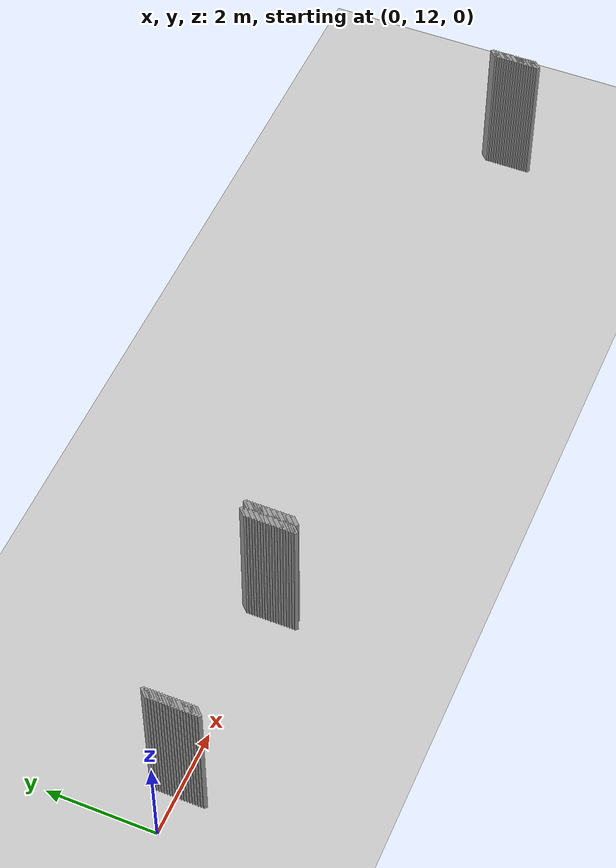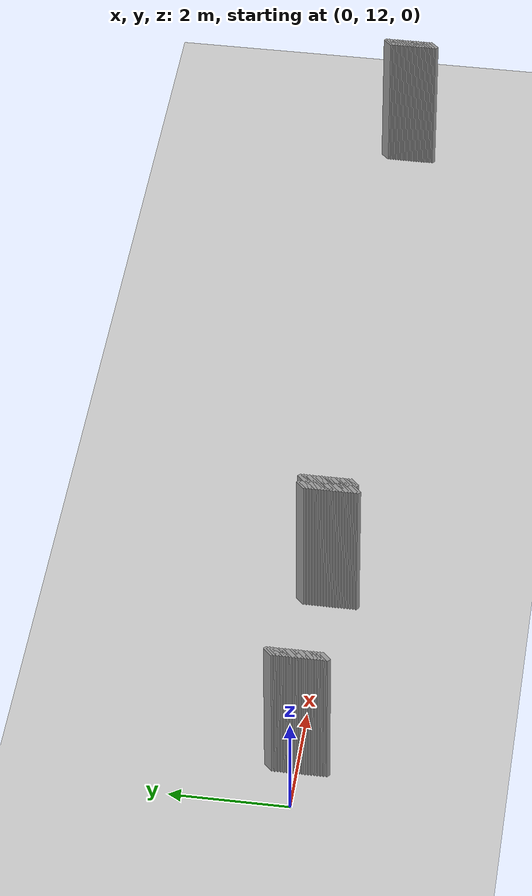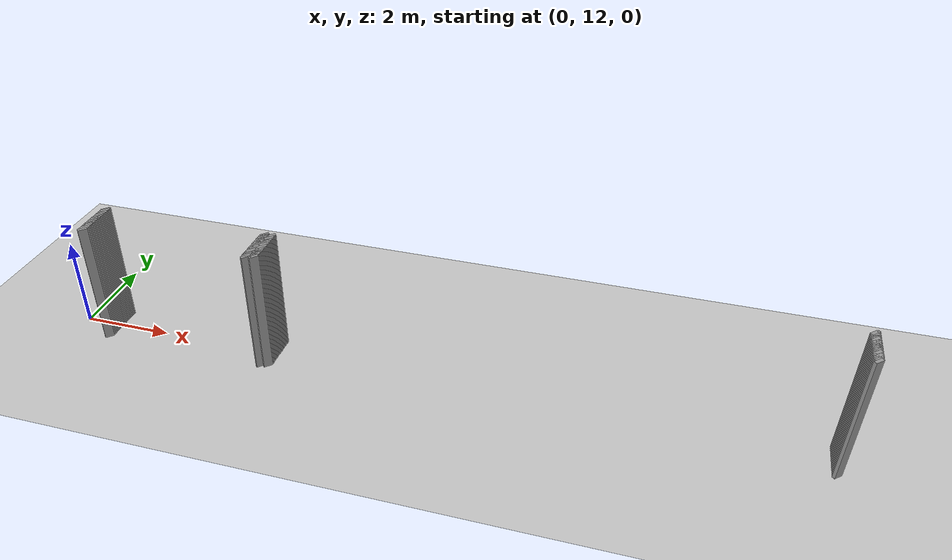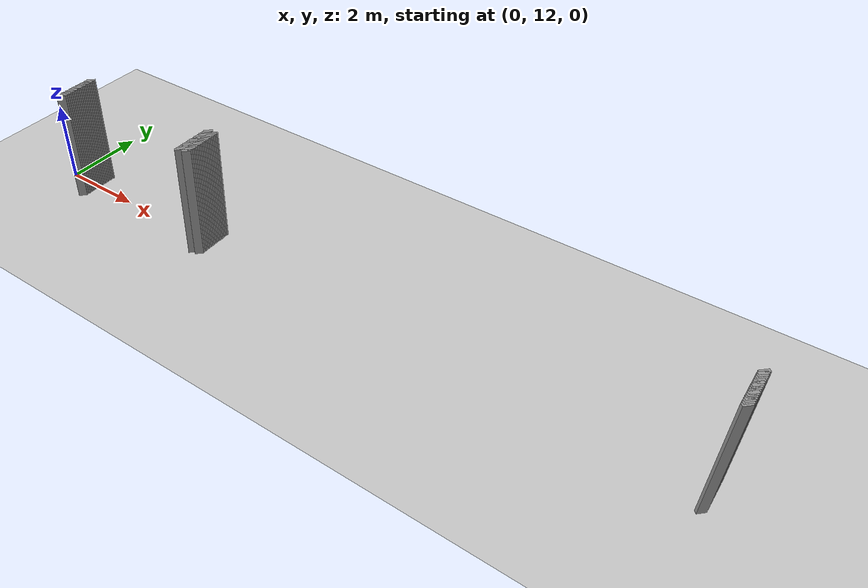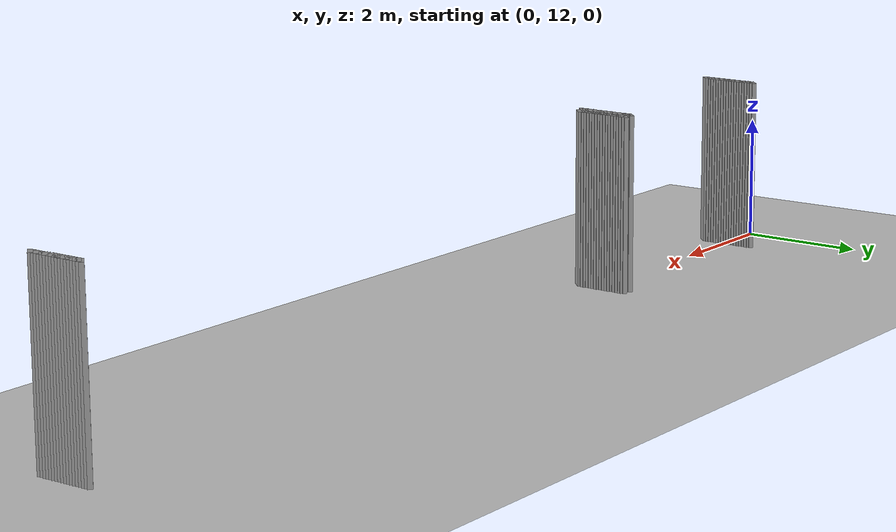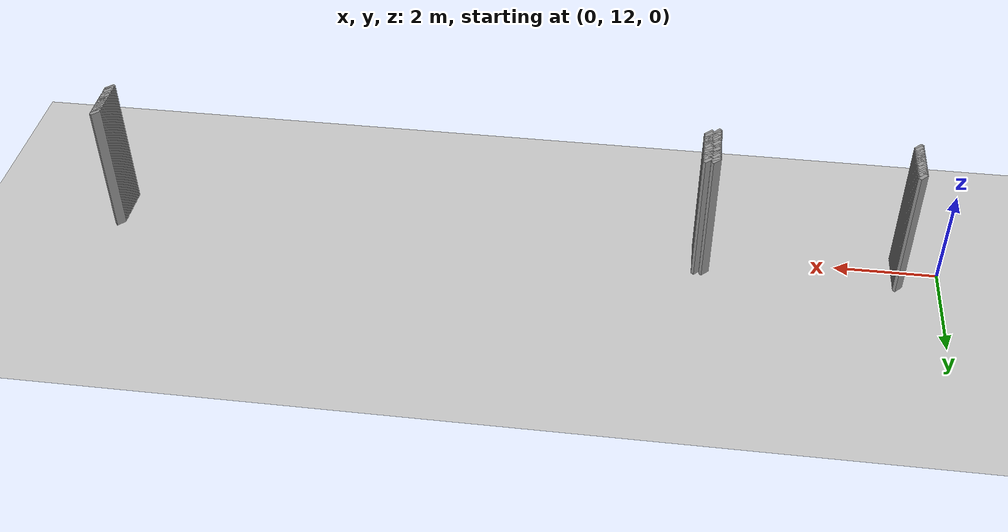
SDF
<sdf version="1.5">
 <world name="default">
  <include><uri>model://ground_plane</uri></include>
  <include><uri>model://sun</uri></include>
  <model name="grey_wall_1330">
   <static>1</static>
   <link name="link">
    <pose>0.8 12.450000000000001  1.4 0 0 -0.7853981633974549</pose>
    <collision name="collision">
     <geometry><box><size>0.07071067811865529 .2  2.8</size></box></geometry>
    </collision>
    <visual name="visual">
     <cast_shadows>0</cast_shadows>
     <geometry><box><size>0.07071067811865529 .2  2.8</size></box></geometry>
     <material>
      <script>
       <uri>model://grey_wall/materials/scripts</uri>
       <uri>model://grey_wall/materials/textures</uri>
       <name>vrc/grey_wall</name>
      </script>
     </material>
    </visual>
   </link>
  </model>
  <model name="grey_wall_1331">
   <static>1</static>
   <link name="link">
    <pose>4.55 12.450000000000001  1.4 0 0 -0.7853981633974483</pose>
    <collision name="collision">
     <geometry><box><size>0.07071067811865576 .2  2.8</size></box></geometry>
    </collision>
    <visual name="visual">
     <cast_shadows>0</cast_shadows>
     <geometry><box><size>0.07071067811865576 .2  2.8</size></box></geometry>
     <material>
      <script>
       <uri>model://grey_wall/materials/scripts</uri>
       <uri>model://grey_wall/materials/textures</uri>
       <name>vrc/grey_wall</name>
      </script>
     </material>
    </visual>
   </link>
  </model>
  <model name="grey_wall_1332">
   <static>1</static>
   <link name="link">
    <pose>4.7 12.450000000000001  1.4 0 0 -0.7853981633974483</pose>
    <collision name="collision">
     <geometry><box><size>0.07071067811865576 .2  2.8</size></box></geometry>
    </collision>
    <visual name="visual">
     <cast_shadows>0</cast_shadows>
     <geometry><box><size>0.07071067811865576 .2  2.8</size></box></geometry>
     <material>
      <script>
       <uri>model://grey_wall/materials/scripts</uri>
       <uri>model://grey_wall/materials/textures</uri>
       <name>vrc/grey_wall</name>
      </script>
     </material>
    </visual>
   </link>
  </model>
  <model name="grey_wall_1333">
   <static>1</static>
   <link name="link">
    <pose>16.45 12.450000000000001  1.4 0 0 -0.7853981633974838</pose>
    <collision name="collision">
     <geometry><box><size>0.07071067811865325 .2  2.8</size></box></geometry>
    </collision>
    <visual name="visual">
     <cast_shadows>0</cast_shadows>
     <geometry><box><size>0.07071067811865325 .2  2.8</size></box></geometry>
     <material>
      <script>
       <uri>model://grey_wall/materials/scripts</uri>
       <uri>model://grey_wall/materials/textures</uri>
       <name>vrc/grey_wall</name>
      </script>
     </material>
    </visual>
   </link>
  </model>
  <model name="grey_wall_1334">
   <static>1</static>
   <link name="link">
    <pose>0.8 12.4  1.4 0 0 -0.7853981633974549</pose>
    <collision name="collision">
     <geometry><box><size>0.07071067811865529 .2  2.8</size></box></geometry>
    </collision>
    <visual name="visual">
     <cast_shadows>0</cast_shadows>
     <geometry><box><size>0.07071067811865529 .2  2.8</size></box></geometry>
     <material>
      <script>
       <uri>model://grey_wall/materials/scripts</uri>
       <uri>model://grey_wall/materials/textures</uri>
       <name>vrc/grey_wall</name>
      </script>
     </material>
    </visual>
   </link>
  </model>
  <model name="grey_wall_1335">
   <static>1</static>
   <link name="link">
    <pose>4.55 12.4  1.4 0 0 -0.7853981633974483</pose>
    <collision name="collision">
     <geometry><box><size>0.07071067811865576 .2  2.8</size></box></geometry>
    </collision>
    <visual name="visual">
     <cast_shadows>0</cast_shadows>
     <geometry><box><size>0.07071067811865576 .2  2.8</size></box></geometry>
     <material>
      <script>
       <uri>model://grey_wall/materials/scripts</uri>
       <uri>model://grey_wall/materials/textures</uri>
       <name>vrc/grey_wall</name>
      </script>
     </material>
    </visual>
   </link>
  </model>
  <model name="grey_wall_1336">
   <static>1</static>
   <link name="link">
    <pose>4.7 12.4  1.4 0 0 -0.7853981633974483</pose>
    <collision name="collision">
     <geometry><box><size>0.07071067811865576 .2  2.8</size></box></geometry>
    </collision>
    <visual name="visual">
     <cast_shadows>0</cast_shadows>
     <geometry><box><size>0.07071067811865576 .2  2.8</size></box></geometry>
     <material>
      <script>
       <uri>model://grey_wall/materials/scripts</uri>
       <uri>model://grey_wall/materials/textures</uri>
       <name>vrc/grey_wall</name>
      </script>
     </material>
    </visual>
   </link>
  </model>
  <model name="grey_wall_1337">
   <static>1</static>
   <link name="link">
    <pose>16.45 12.4  1.4 0 0 -0.7853981633974838</pose>
    <collision name="collision">
     <geometry><box><size>0.07071067811865325 .2  2.8</size></box></geometry>
    </collision>
    <visual name="visual">
     <cast_shadows>0</cast_shadows>
     <geometry><box><size>0.07071067811865325 .2  2.8</size></box></geometry>
     <material>
      <script>
       <uri>model://grey_wall/materials/scripts</uri>
       <uri>model://grey_wall/materials/textures</uri>
       <name>vrc/grey_wall</name>
      </script>
     </material>
    </visual>
   </link>
  </model>
  <model name="grey_wall_1338">
   <static>1</static>
   <link name="link">
    <pose>0.8 12.350000000000001  1.4 0 0 -0.7853981633974549</pose>
    <collision name="collision">
     <geometry><box><size>0.07071067811865529 .2  2.8</size></box></geometry>
    </collision>
    <visual name="visual">
     <cast_shadows>0</cast_shadows>
     <geometry><box><size>0.07071067811865529 .2  2.8</size></box></geometry>
     <material>
      <script>
       <uri>model://grey_wall/materials/scripts</uri>
       <uri>model://grey_wall/materials/textures</uri>
       <name>vrc/grey_wall</name>
      </script>
     </material>
    </visual>
   </link>
  </model>
  <model name="grey_wall_1339">
   <static>1</static>
   <link name="link">
    <pose>4.55 12.350000000000001  1.4 0 0 -0.7853981633974483</pose>
    <collision name="collision">
     <geometry><box><size>0.07071067811865576 .2  2.8</size></box></geometry>
    </collision>
    <visual name="visual">
     <cast_shadows>0</cast_shadows>
     <geometry><box><size>0.07071067811865576 .2  2.8</size></box></geometry>
     <material>
      <script>
       <uri>model://grey_wall/materials/scripts</uri>
       <uri>model://grey_wall/materials/textures</uri>
       <name>vrc/grey_wall</name>
      </script>
     </material>
    </visual>
   </link>
  </model>
  <model name="grey_wall_1340">
   <static>1</static>
   <link name="link">
    <pose>4.7 12.350000000000001  1.4 0 0 -0.7853981633974483</pose>
    <collision name="collision">
     <geometry><box><size>0.07071067811865576 .2  2.8</size></box></geometry>
    </collision>
    <visual name="visual">
     <cast_shadows>0</cast_shadows>
     <geometry><box><size>0.07071067811865576 .2  2.8</size></box></geometry>
     <material>
      <script>
       <uri>model://grey_wall/materials/scripts</uri>
       <uri>model://grey_wall/materials/textures</uri>
       <name>vrc/grey_wall</name>
      </script>
     </material>
    </visual>
   </link>
  </model>
  <model name="grey_wall_1341">
   <static>1</static>
   <link name="link">
    <pose>16.45 12.350000000000001  1.4 0 0 -0.7853981633974838</pose>
    <collision name="collision">
     <geometry><box><size>0.07071067811865325 .2  2.8</size></box></geometry>
    </collision>
    <visual name="visual">
     <cast_shadows>0</cast_shadows>
     <geometry><box><size>0.07071067811865325 .2  2.8</size></box></geometry>
     <material>
      <script>
       <uri>model://grey_wall/materials/scripts</uri>
       <uri>model://grey_wall/materials/textures</uri>
       <name>vrc/grey_wall</name>
      </script>
     </material>
    </visual>
   </link>
  </model>
  <model name="grey_wall_1342">
   <static>1</static>
   <link name="link">
    <pose>0.8 12.3  1.4 0 0 -0.7853981633974549</pose>
    <collision name="collision">
     <geometry><box><size>0.07071067811865529 .2  2.8</size></box></geometry>
    </collision>
    <visual name="visual">
     <cast_shadows>0</cast_shadows>
     <geometry><box><size>0.07071067811865529 .2  2.8</size></box></geometry>
     <material>
      <script>
       <uri>model://grey_wall/materials/scripts</uri>
       <uri>model://grey_wall/materials/textures</uri>
       <name>vrc/grey_wall</name>
      </script>
     </material>
    </visual>
   </link>
  </model>
  <model name="grey_wall_1343">
   <static>1</static>
   <link name="link">
    <pose>4.55 12.3  1.4 0 0 -0.7853981633974483</pose>
    <collision name="collision">
     <geometry><box><size>0.07071067811865576 .2  2.8</size></box></geometry>
    </collision>
    <visual name="visual">
     <cast_shadows>0</cast_shadows>
     <geometry><box><size>0.07071067811865576 .2  2.8</size></box></geometry>
     <material>
      <script>
       <uri>model://grey_wall/materials/scripts</uri>
       <uri>model://grey_wall/materials/textures</uri>
       <name>vrc/grey_wall</name>
      </script>
     </material>
    </visual>
   </link>
  </model>
  <model name="grey_wall_1344">
   <static>1</static>
   <link name="link">
    <pose>4.7 12.3  1.4 0 0 -0.7853981633974483</pose>
    <collision name="collision">
     <geometry><box><size>0.07071067811865576 .2  2.8</size></box></geometry>
    </collision>
    <visual name="visual">
     <cast_shadows>0</cast_shadows>
     <geometry><box><size>0.07071067811865576 .2  2.8</size></box></geometry>
     <material>
      <script>
       <uri>model://grey_wall/materials/scripts</uri>
       <uri>model://grey_wall/materials/textures</uri>
       <name>vrc/grey_wall</name>
      </script>
     </material>
    </visual>
   </link>
  </model>
  <model name="grey_wall_1345">
   <static>1</static>
   <link name="link">
    <pose>16.45 12.3  1.4 0 0 -0.7853981633974838</pose>
    <collision name="collision">
     <geometry><box><size>0.07071067811865325 .2  2.8</size></box></geometry>
    </collision>
    <visual name="visual">
     <cast_shadows>0</cast_shadows>
     <geometry><box><size>0.07071067811865325 .2  2.8</size></box></geometry>
     <material>
      <script>
       <uri>model://grey_wall/materials/scripts</uri>
       <uri>model://grey_wall/materials/textures</uri>
       <name>vrc/grey_wall</name>
      </script>
     </material>
    </visual>
   </link>
  </model>
  <model name="grey_wall_1346">
   <static>1</static>
   <link name="link">
    <pose>0.8 12.25  1.4 0 0 -0.7853981633974549</pose>
    <collision name="collision">
     <geometry><box><size>0.07071067811865529 .2  2.8</size></box></geometry>
    </collision>
    <visual name="visual">
     <cast_shadows>0</cast_shadows>
     <geometry><box><size>0.07071067811865529 .2  2.8</size></box></geometry>
     <material>
      <script>
       <uri>model://grey_wall/materials/scripts</uri>
       <uri>model://grey_wall/materials/textures</uri>
       <name>vrc/grey_wall</name>
      </script>
     </material>
    </visual>
   </link>
  </model>
  <model name="grey_wall_1347">
   <static>1</static>
   <link name="link">
    <pose>4.55 12.25  1.4 0 0 -0.7853981633974483</pose>
    <collision name="collision">
     <geometry><box><size>0.07071067811865576 .2  2.8</size></box></geometry>
    </collision>
    <visual name="visual">
     <cast_shadows>0</cast_shadows>
     <geometry><box><size>0.07071067811865576 .2  2.8</size></box></geometry>
     <material>
      <script>
       <uri>model://grey_wall/materials/scripts</uri>
       <uri>model://grey_wall/materials/textures</uri>
       <name>vrc/grey_wall</name>
      </script>
     </material>
    </visual>
   </link>
  </model>
  <model name="grey_wall_1348">
   <static>1</static>
   <link name="link">
    <pose>4.7 12.25  1.4 0 0 -0.7853981633974483</pose>
    <collision name="collision">
     <geometry><box><size>0.07071067811865576 .2  2.8</size></box></geometry>
    </collision>
    <visual name="visual">
     <cast_shadows>0</cast_shadows>
     <geometry><box><size>0.07071067811865576 .2  2.8</size></box></geometry>
     <material>
      <script>
       <uri>model://grey_wall/materials/scripts</uri>
       <uri>model://grey_wall/materials/textures</uri>
       <name>vrc/grey_wall</name>
      </script>
     </material>
    </visual>
   </link>
  </model>
  <model name="grey_wall_1349">
   <static>1</static>
   <link name="link">
    <pose>16.45 12.25  1.4 0 0 -0.7853981633974838</pose>
    <collision name="collision">
     <geometry><box><size>0.07071067811865325 .2  2.8</size></box></geometry>
    </collision>
    <visual name="visual">
     <cast_shadows>0</cast_shadows>
     <geometry><box><size>0.07071067811865325 .2  2.8</size></box></geometry>
     <material>
      <script>
       <uri>model://grey_wall/materials/scripts</uri>
       <uri>model://grey_wall/materials/textures</uri>
       <name>vrc/grey_wall</name>
      </script>
     </material>
    </visual>
   </link>
  </model>
  <model name="grey_wall_1350">
   <static>1</static>
   <link name="link">
    <pose>0.8 12.200000000000001  1.4 0 0 -0.7853981633974549</pose>
    <collision name="collision">
     <geometry><box><size>0.07071067811865529 .2  2.8</size></box></geometry>
    </collision>
    <visual name="visual">
     <cast_shadows>0</cast_shadows>
     <geometry><box><size>0.07071067811865529 .2  2.8</size></box></geometry>
     <material>
      <script>
       <uri>model://grey_wall/materials/scripts</uri>
       <uri>model://grey_wall/materials/textures</uri>
       <name>vrc/grey_wall</name>
      </script>
     </material>
    </visual>
   </link>
  </model>
  <model name="grey_wall_1351">
   <static>1</static>
   <link name="link">
    <pose>4.55 12.200000000000001  1.4 0 0 -0.7853981633974483</pose>
    <collision name="collision">
     <geometry><box><size>0.07071067811865576 .2  2.8</size></box></geometry>
    </collision>
    <visual name="visual">
     <cast_shadows>0</cast_shadows>
     <geometry><box><size>0.07071067811865576 .2  2.8</size></box></geometry>
     <material>
      <script>
       <uri>model://grey_wall/materials/scripts</uri>
       <uri>model://grey_wall/materials/textures</uri>
       <name>vrc/grey_wall</name>
      </script>
     </material>
    </visual>
   </link>
  </model>
  <model name="grey_wall_1352">
   <static>1</static>
   <link name="link">
    <pose>4.7 12.200000000000001  1.4 0 0 -0.7853981633974483</pose>
    <collision name="collision">
     <geometry><box><size>0.07071067811865576 .2  2.8</size></box></geometry>
    </collision>
    <visual name="visual">
     <cast_shadows>0</cast_shadows>
     <geometry><box><size>0.07071067811865576 .2  2.8</size></box></geometry>
     <material>
      <script>
       <uri>model://grey_wall/materials/scripts</uri>
       <uri>model://grey_wall/materials/textures</uri>
       <name>vrc/grey_wall</name>
      </script>
     </material>
    </visual>
   </link>
  </model>
  <model name="grey_wall_1353">
   <static>1</static>
   <link name="link">
    <pose>16.45 12.200000000000001  1.4 0 0 -0.7853981633974838</pose>
    <collision name="collision">
     <geometry><box><size>0.07071067811865325 .2  2.8</size></box></geometry>
    </collision>
    <visual name="visual">
     <cast_shadows>0</cast_shadows>
     <geometry><box><size>0.07071067811865325 .2  2.8</size></box></geometry>
     <material>
      <script>
       <uri>model://grey_wall/materials/scripts</uri>
       <uri>model://grey_wall/materials/textures</uri>
       <name>vrc/grey_wall</name>
      </script>
     </material>
    </visual>
   </link>
  </model>
  <model name="grey_wall_1354">
   <static>1</static>
   <link name="link">
    <pose>0.8 12.15  1.4 0 0 -0.7853981633974549</pose>
    <collision name="collision">
     <geometry><box><size>0.07071067811865529 .2  2.8</size></box></geometry>
    </collision>
    <visual name="visual">
     <cast_shadows>0</cast_shadows>
     <geometry><box><size>0.07071067811865529 .2  2.8</size></box></geometry>
     <material>
      <script>
       <uri>model://grey_wall/materials/scripts</uri>
       <uri>model://grey_wall/materials/textures</uri>
       <name>vrc/grey_wall</name>
      </script>
     </material>
    </visual>
   </link>
  </model>
  <model name="grey_wall_1355">
   <static>1</static>
   <link name="link">
    <pose>4.55 12.15  1.4 0 0 -0.7853981633974483</pose>
    <collision name="collision">
     <geometry><box><size>0.07071067811865576 .2  2.8</size></box></geometry>
    </collision>
    <visual name="visual">
     <cast_shadows>0</cast_shadows>
     <geometry><box><size>0.07071067811865576 .2  2.8</size></box></geometry>
     <material>
      <script>
       <uri>model://grey_wall/materials/scripts</uri>
       <uri>model://grey_wall/materials/textures</uri>
       <name>vrc/grey_wall</name>
      </script>
     </material>
    </visual>
   </link>
  </model>
  <model name="grey_wall_1356">
   <static>1</static>
   <link name="link">
    <pose>4.7 12.15  1.4 0 0 -0.7853981633974483</pose>
    <collision name="collision">
     <geometry><box><size>0.07071067811865576 .2  2.8</size></box></geometry>
    </collision>
    <visual name="visual">
     <cast_shadows>0</cast_shadows>
     <geometry><box><size>0.07071067811865576 .2  2.8</size></box></geometry>
     <material>
      <script>
       <uri>model://grey_wall/materials/scripts</uri>
       <uri>model://grey_wall/materials/textures</uri>
       <name>vrc/grey_wall</name>
      </script>
     </material>
    </visual>
   </link>
  </model>
  <model name="grey_wall_1357">
   <static>1</static>
   <link name="link">
    <pose>16.45 12.15  1.4 0 0 -0.7853981633974838</pose>
    <collision name="collision">
     <geometry><box><size>0.07071067811865325 .2  2.8</size></box></geometry>
    </collision>
    <visual name="visual">
     <cast_shadows>0</cast_shadows>
     <geometry><box><size>0.07071067811865325 .2  2.8</size></box></geometry>
     <material>
      <script>
       <uri>model://grey_wall/materials/scripts</uri>
       <uri>model://grey_wall/materials/textures</uri>
       <name>vrc/grey_wall</name>
      </script>
     </material>
    </visual>
   </link>
  </model>
  <model name="grey_wall_1358">
   <static>1</static>
   <link name="link">
    <pose>0.8 12.100000000000001  1.4 0 0 -0.7853981633974549</pose>
    <collision name="collision">
     <geometry><box><size>0.07071067811865529 .2  2.8</size></box></geometry>
    </collision>
    <visual name="visual">
     <cast_shadows>0</cast_shadows>
     <geometry><box><size>0.07071067811865529 .2  2.8</size></box></geometry>
     <material>
      <script>
       <uri>model://grey_wall/materials/scripts</uri>
       <uri>model://grey_wall/materials/textures</uri>
       <name>vrc/grey_wall</name>
      </script>
     </material>
    </visual>
   </link>
  </model>
  <model name="grey_wall_1359">
   <static>1</static>
   <link name="link">
    <pose>4.55 12.100000000000001  1.4 0 0 -0.7853981633974483</pose>
    <collision name="collision">
     <geometry><box><size>0.07071067811865576 .2  2.8</size></box></geometry>
    </collision>
    <visual name="visual">
     <cast_shadows>0</cast_shadows>
     <geometry><box><size>0.07071067811865576 .2  2.8</size></box></geometry>
     <material>
      <script>
       <uri>model://grey_wall/materials/scripts</uri>
       <uri>model://grey_wall/materials/textures</uri>
       <name>vrc/grey_wall</name>
      </script>
     </material>
    </visual>
   </link>
  </model>
  <model name="grey_wall_1360">
   <static>1</static>
   <link name="link">
    <pose>4.7 12.100000000000001  1.4 0 0 -0.7853981633974483</pose>
    <collision name="collision">
     <geometry><box><size>0.07071067811865576 .2  2.8</size></box></geometry>
    </collision>
    <visual name="visual">
     <cast_shadows>0</cast_shadows>
     <geometry><box><size>0.07071067811865576 .2  2.8</size></box></geometry>
     <material>
      <script>
       <uri>model://grey_wall/materials/scripts</uri>
       <uri>model://grey_wall/materials/textures</uri>
       <name>vrc/grey_wall</name>
      </script>
     </material>
    </visual>
   </link>
  </model>
  <model name="grey_wall_1361">
   <static>1</static>
   <link name="link">
    <pose>16.45 12.100000000000001  1.4 0 0 -0.7853981633974838</pose>
    <collision name="collision">
     <geometry><box><size>0.07071067811865325 .2  2.8</size></box></geometry>
    </collision>
    <visual name="visual">
     <cast_shadows>0</cast_shadows>
     <geometry><box><size>0.07071067811865325 .2  2.8</size></box></geometry>
     <material>
      <script>
       <uri>model://grey_wall/materials/scripts</uri>
       <uri>model://grey_wall/materials/textures</uri>
       <name>vrc/grey_wall</name>
      </script>
     </material>
    </visual>
   </link>
  </model>
  <model name="grey_wall_1362">
   <static>1</static>
   <link name="link">
    <pose>0.8 12.05  1.4 0 0 -0.7853981633974549</pose>
    <collision name="collision">
     <geometry><box><size>0.07071067811865529 .2  2.8</size></box></geometry>
    </collision>
    <visual name="visual">
     <cast_shadows>0</cast_shadows>
     <geometry><box><size>0.07071067811865529 .2  2.8</size></box></geometry>
     <material>
      <script>
       <uri>model://grey_wall/materials/scripts</uri>
       <uri>model://grey_wall/materials/textures</uri>
       <name>vrc/grey_wall</name>
      </script>
     </material>
    </visual>
   </link>
  </model>
  <model name="grey_wall_1363">
   <static>1</static>
   <link name="link">
    <pose>4.55 12.05  1.4 0 0 -0.7853981633974483</pose>
    <collision name="collision">
     <geometry><box><size>0.07071067811865576 .2  2.8</size></box></geometry>
    </collision>
    <visual name="visual">
     <cast_shadows>0</cast_shadows>
     <geometry><box><size>0.07071067811865576 .2  2.8</size></box></geometry>
     <material>
      <script>
       <uri>model://grey_wall/materials/scripts</uri>
       <uri>model://grey_wall/materials/textures</uri>
       <name>vrc/grey_wall</name>
      </script>
     </material>
    </visual>
   </link>
  </model>
  <model name="grey_wall_1364">
   <static>1</static>
   <link name="link">
    <pose>4.7 12.05  1.4 0 0 -0.7853981633974483</pose>
    <collision name="collision">
     <geometry><box><size>0.07071067811865576 .2  2.8</size></box></geometry>
    </collision>
    <visual name="visual">
     <cast_shadows>0</cast_shadows>
     <geometry><box><size>0.07071067811865576 .2  2.8</size></box></geometry>
     <material>
      <script>
       <uri>model://grey_wall/materials/scripts</uri>
       <uri>model://grey_wall/materials/textures</uri>
       <name>vrc/grey_wall</name>
      </script>
     </material>
    </visual>
   </link>
  </model>
  <model name="grey_wall_1365">
   <static>1</static>
   <link name="link">
    <pose>16.45 12.05  1.4 0 0 -0.7853981633974838</pose>
    <collision name="collision">
     <geometry><box><size>0.07071067811865325 .2  2.8</size></box></geometry>
    </collision>
    <visual name="visual">
     <cast_shadows>0</cast_shadows>
     <geometry><box><size>0.07071067811865325 .2  2.8</size></box></geometry>
     <material>
      <script>
       <uri>model://grey_wall/materials/scripts</uri>
       <uri>model://grey_wall/materials/textures</uri>
       <name>vrc/grey_wall</name>
      </script>
     </material>
    </visual>
   </link>
  </model>
  <model name="grey_wall_1366">
   <static>1</static>
   <link name="link">
    <pose>0.8 12.0  1.4 0 0 -0.7853981633974549</pose>
    <collision name="collision">
     <geometry><box><size>0.07071067811865529 .2  2.8</size></box></geometry>
    </collision>
    <visual name="visual">
     <cast_shadows>0</cast_shadows>
     <geometry><box><size>0.07071067811865529 .2  2.8</size></box></geometry>
     <material>
      <script>
       <uri>model://grey_wall/materials/scripts</uri>
       <uri>model://grey_wall/materials/textures</uri>
       <name>vrc/grey_wall</name>
      </script>
     </material>
    </visual>
   </link>
  </model>
  <model name="grey_wall_1367">
   <static>1</static>
   <link name="link">
    <pose>4.55 12.0  1.4 0 0 -0.7853981633974483</pose>
    <collision name="collision">
     <geometry><box><size>0.07071067811865576 .2  2.8</size></box></geometry>
    </collision>
    <visual name="visual">
     <cast_shadows>0</cast_shadows>
     <geometry><box><size>0.07071067811865576 .2  2.8</size></box></geometry>
     <material>
      <script>
       <uri>model://grey_wall/materials/scripts</uri>
       <uri>model://grey_wall/materials/textures</uri>
       <name>vrc/grey_wall</name>
      </script>
     </material>
    </visual>
   </link>
  </model>
  <model name="grey_wall_1368">
   <static>1</static>
   <link name="link">
    <pose>4.7 12.0  1.4 0 0 -0.7853981633974483</pose>
    <collision name="collision">
     <geometry><box><size>0.07071067811865576 .2  2.8</size></box></geometry>
    </collision>
    <visual name="visual">
     <cast_shadows>0</cast_shadows>
     <geometry><box><size>0.07071067811865576 .2  2.8</size></box></geometry>
     <material>
      <script>
       <uri>model://grey_wall/materials/scripts</uri>
       <uri>model://grey_wall/materials/textures</uri>
       <name>vrc/grey_wall</name>
      </script>
     </material>
    </visual>
   </link>
  </model>
  <model name="grey_wall_1369">
   <static>1</static>
   <link name="link">
    <pose>16.45 12.0  1.4 0 0 -0.7853981633974838</pose>
    <collision name="collision">
     <geometry><box><size>0.07071067811865325 .2  2.8</size></box></geometry>
    </collision>
    <visual name="visual">
     <cast_shadows>0</cast_shadows>
     <geometry><box><size>0.07071067811865325 .2  2.8</size></box></geometry>
     <material>
      <script>
       <uri>model://grey_wall/materials/scripts</uri>
       <uri>model://grey_wall/materials/textures</uri>
       <name>vrc/grey_wall</name>
      </script>
     </material>
    </visual>
   </link>
  </model>
  <model name="grey_wall_1370">
   <static>1</static>
   <link name="link">
    <pose>0.8 11.950000000000001  1.4 0 0 -0.7853981633974549</pose>
    <collision name="collision">
     <geometry><box><size>0.07071067811865529 .2  2.8</size></box></geometry>
    </collision>
    <visual name="visual">
     <cast_shadows>0</cast_shadows>
     <geometry><box><size>0.07071067811865529 .2  2.8</size></box></geometry>
     <material>
      <script>
       <uri>model://grey_wall/materials/scripts</uri>
       <uri>model://grey_wall/materials/textures</uri>
       <name>vrc/grey_wall</name>
      </script>
     </material>
    </visual>
   </link>
  </model>
  <model name="grey_wall_1371">
   <static>1</static>
   <link name="link">
    <pose>4.55 11.950000000000001  1.4 0 0 -0.7853981633974483</pose>
    <collision name="collision">
     <geometry><box><size>0.07071067811865576 .2  2.8</size></box></geometry>
    </collision>
    <visual name="visual">
     <cast_shadows>0</cast_shadows>
     <geometry><box><size>0.07071067811865576 .2  2.8</size></box></geometry>
     <material>
      <script>
       <uri>model://grey_wall/materials/scripts</uri>
       <uri>model://grey_wall/materials/textures</uri>
       <name>vrc/grey_wall</name>
      </script>
     </material>
    </visual>
   </link>
  </model>
  <model name="grey_wall_1372">
   <static>1</static>
   <link name="link">
    <pose>4.7 11.950000000000001  1.4 0 0 -0.7853981633974483</pose>
    <collision name="collision">
     <geometry><box><size>0.07071067811865576 .2  2.8</size></box></geometry>
    </collision>
    <visual name="visual">
     <cast_shadows>0</cast_shadows>
     <geometry><box><size>0.07071067811865576 .2  2.8</size></box></geometry>
     <material>
      <script>
       <uri>model://grey_wall/materials/scripts</uri>
       <uri>model://grey_wall/materials/textures</uri>
       <name>vrc/grey_wall</name>
      </script>
     </material>
    </visual>
   </link>
  </model>
  <model name="grey_wall_1373">
   <static>1</static>
   <link name="link">
    <pose>16.45 11.950000000000001  1.4 0 0 -0.7853981633974838</pose>
    <collision name="collision">
     <geometry><box><size>0.07071067811865325 .2  2.8</size></box></geometry>
    </collision>
    <visual name="visual">
     <cast_shadows>0</cast_shadows>
     <geometry><box><size>0.07071067811865325 .2  2.8</size></box></geometry>
     <material>
      <script>
       <uri>model://grey_wall/materials/scripts</uri>
       <uri>model://grey_wall/materials/textures</uri>
       <name>vrc/grey_wall</name>
      </script>
     </material>
    </visual>
   </link>
  </model>
  <model name="grey_wall_1374">
   <static>1</static>
   <link name="link">
    <pose>0.8 11.9  1.4 0 0 -0.7853981633974549</pose>
    <collision name="collision">
     <geometry><box><size>0.07071067811865529 .2  2.8</size></box></geometry>
    </collision>
    <visual name="visual">
     <cast_shadows>0</cast_shadows>
     <geometry><box><size>0.07071067811865529 .2  2.8</size></box></geometry>
     <material>
      <script>
       <uri>model://grey_wall/materials/scripts</uri>
       <uri>model://grey_wall/materials/textures</uri>
       <name>vrc/grey_wall</name>
      </script>
     </material>
    </visual>
   </link>
  </model>
  <model name="grey_wall_1375">
   <static>1</static>
   <link name="link">
    <pose>4.55 11.9  1.4 0 0 -0.7853981633974483</pose>
    <collision name="collision">
     <geometry><box><size>0.07071067811865576 .2  2.8</size></box></geometry>
    </collision>
    <visual name="visual">
     <cast_shadows>0</cast_shadows>
     <geometry><box><size>0.07071067811865576 .2  2.8</size></box></geometry>
     <material>
      <script>
       <uri>model://grey_wall/materials/scripts</uri>
       <uri>model://grey_wall/materials/textures</uri>
       <name>vrc/grey_wall</name>
      </script>
     </material>
    </visual>
   </link>
  </model>
  <model name="grey_wall_1376">
   <static>1</static>
   <link name="link">
    <pose>4.7 11.9  1.4 0 0 -0.7853981633974483</pose>
    <collision name="collision">
     <geometry><box><size>0.07071067811865576 .2  2.8</size></box></geometry>
    </collision>
    <visual name="visual">
     <cast_shadows>0</cast_shadows>
     <geometry><box><size>0.07071067811865576 .2  2.8</size></box></geometry>
     <material>
      <script>
       <uri>model://grey_wall/materials/scripts</uri>
       <uri>model://grey_wall/materials/textures</uri>
       <name>vrc/grey_wall</name>
      </script>
     </material>
    </visual>
   </link>
  </model>
  <model name="grey_wall_1377">
   <static>1</static>
   <link name="link">
    <pose>16.45 11.9  1.4 0 0 -0.7853981633974838</pose>
    <collision name="collision">
     <geometry><box><size>0.07071067811865325 .2  2.8</size></box></geometry>
    </collision>
    <visual name="visual">
     <cast_shadows>0</cast_shadows>
     <geometry><box><size>0.07071067811865325 .2  2.8</size></box></geometry>
     <material>
      <script>
       <uri>model://grey_wall/materials/scripts</uri>
       <uri>model://grey_wall/materials/textures</uri>
       <name>vrc/grey_wall</name>
      </script>
     </material>
    </visual>
   </link>
  </model>
  <model name="grey_wall_1378">
   <static>1</static>
   <link name="link">
    <pose>0.8 11.850000000000001  1.4 0 0 -0.7853981633974549</pose>
    <collision name="collision">
     <geometry><box><size>0.07071067811865529 .2  2.8</size></box></geometry>
    </collision>
    <visual name="visual">
     <cast_shadows>0</cast_shadows>
     <geometry><box><size>0.07071067811865529 .2  2.8</size></box></geometry>
     <material>
      <script>
       <uri>model://grey_wall/materials/scripts</uri>
       <uri>model://grey_wall/materials/textures</uri>
       <name>vrc/grey_wall</name>
      </script>
     </material>
    </visual>
   </link>
  </model>
  <model name="grey_wall_1379">
   <static>1</static>
   <link name="link">
    <pose>4.55 11.850000000000001  1.4 0 0 -0.7853981633974483</pose>
    <collision name="collision">
     <geometry><box><size>0.07071067811865576 .2  2.8</size></box></geometry>
    </collision>
    <visual name="visual">
     <cast_shadows>0</cast_shadows>
     <geometry><box><size>0.07071067811865576 .2  2.8</size></box></geometry>
     <material>
      <script>
       <uri>model://grey_wall/materials/scripts</uri>
       <uri>model://grey_wall/materials/textures</uri>
       <name>vrc/grey_wall</name>
      </script>
     </material>
    </visual>
   </link>
  </model>
  <model name="grey_wall_1380">
   <static>1</static>
   <link name="link">
    <pose>4.7 11.850000000000001  1.4 0 0 -0.7853981633974483</pose>
    <collision name="collision">
     <geometry><box><size>0.07071067811865576 .2  2.8</size></box></geometry>
    </collision>
    <visual name="visual">
     <cast_shadows>0</cast_shadows>
     <geometry><box><size>0.07071067811865576 .2  2.8</size></box></geometry>
     <material>
      <script>
       <uri>model://grey_wall/materials/scripts</uri>
       <uri>model://grey_wall/materials/textures</uri>
       <name>vrc/grey_wall</name>
      </script>
     </material>
    </visual>
   </link>
  </model>
  <model name="grey_wall_1381">
   <static>1</static>
   <link name="link">
    <pose>16.45 11.850000000000001  1.4 0 0 -0.7853981633974838</pose>
    <collision name="collision">
     <geometry><box><size>0.07071067811865325 .2  2.8</size></box></geometry>
    </collision>
    <visual name="visual">
     <cast_shadows>0</cast_shadows>
     <geometry><box><size>0.07071067811865325 .2  2.8</size></box></geometry>
     <material>
      <script>
       <uri>model://grey_wall/materials/scripts</uri>
       <uri>model://grey_wall/materials/textures</uri>
       <name>vrc/grey_wall</name>
      </script>
     </material>
    </visual>
   </link>
  </model>
  <model name="grey_wall_1382">
   <static>1</static>
   <link name="link">
    <pose>0.8 11.8  1.4 0 0 -0.7853981633974549</pose>
    <collision name="collision">
     <geometry><box><size>0.07071067811865529 .2  2.8</size></box></geometry>
    </collision>
    <visual name="visual">
     <cast_shadows>0</cast_shadows>
     <geometry><box><size>0.07071067811865529 .2  2.8</size></box></geometry>
     <material>
      <script>
       <uri>model://grey_wall/materials/scripts</uri>
       <uri>model://grey_wall/materials/textures</uri>
       <name>vrc/grey_wall</name>
      </script>
     </material>
    </visual>
   </link>
  </model>
  <model name="grey_wall_1383">
   <static>1</static>
   <link name="link">
    <pose>4.55 11.8  1.4 0 0 -0.7853981633974483</pose>
    <collision name="collision">
     <geometry><box><size>0.07071067811865576 .2  2.8</size></box></geometry>
    </collision>
    <visual name="visual">
     <cast_shadows>0</cast_shadows>
     <geometry><box><size>0.07071067811865576 .2  2.8</size></box></geometry>
     <material>
      <script>
       <uri>model://grey_wall/materials/scripts</uri>
       <uri>model://grey_wall/materials/textures</uri>
       <name>vrc/grey_wall</name>
      </script>
     </material>
    </visual>
   </link>
  </model>
  <model name="grey_wall_1384">
   <static>1</static>
   <link name="link">
    <pose>4.7 11.8  1.4 0 0 -0.7853981633974483</pose>
    <collision name="collision">
     <geometry><box><size>0.07071067811865576 .2  2.8</size></box></geometry>
    </collision>
    <visual name="visual">
     <cast_shadows>0</cast_shadows>
     <geometry><box><size>0.07071067811865576 .2  2.8</size></box></geometry>
     <material>
      <script>
       <uri>model://grey_wall/materials/scripts</uri>
       <uri>model://grey_wall/materials/textures</uri>
       <name>vrc/grey_wall</name>
      </script>
     </material>
    </visual>
   </link>
  </model>
  <model name="grey_wall_1385">
   <static>1</static>
   <link name="link">
    <pose>16.45 11.8  1.4 0 0 -0.7853981633974838</pose>
    <collision name="collision">
     <geometry><box><size>0.07071067811865325 .2  2.8</size></box></geometry>
    </collision>
    <visual name="visual">
     <cast_shadows>0</cast_shadows>
     <geometry><box><size>0.07071067811865325 .2  2.8</size></box></geometry>
     <material>
      <script>
       <uri>model://grey_wall/materials/scripts</uri>
       <uri>model://grey_wall/materials/textures</uri>
       <name>vrc/grey_wall</name>
      </script>
     </material>
    </visual>
   </link>
  </model>
  <model name="grey_wall_1386">
   <static>1</static>
   <link name="link">
    <pose>0.8 11.75  1.4 0 0 -0.7853981633974549</pose>
    <collision name="collision">
     <geometry><box><size>0.07071067811865529 .2  2.8</size></box></geometry>
    </collision>
    <visual name="visual">
     <cast_shadows>0</cast_shadows>
     <geometry><box><size>0.07071067811865529 .2  2.8</size></box></geometry>
     <material>
      <script>
       <uri>model://grey_wall/materials/scripts</uri>
       <uri>model://grey_wall/materials/textures</uri>
       <name>vrc/grey_wall</name>
      </script>
     </material>
    </visual>
   </link>
  </model>
  <model name="grey_wall_1387">
   <static>1</static>
   <link name="link">
    <pose>4.55 11.75  1.4 0 0 -0.7853981633974483</pose>
    <collision name="collision">
     <geometry><box><size>0.07071067811865576 .2  2.8</size></box></geometry>
    </collision>
    <visual name="visual">
     <cast_shadows>0</cast_shadows>
     <geometry><box><size>0.07071067811865576 .2  2.8</size></box></geometry>
     <material>
      <script>
       <uri>model://grey_wall/materials/scripts</uri>
       <uri>model://grey_wall/materials/textures</uri>
       <name>vrc/grey_wall</name>
      </script>
     </material>
    </visual>
   </link>
  </model>
  <model name="grey_wall_1388">
   <static>1</static>
   <link name="link">
    <pose>4.7 11.75  1.4 0 0 -0.7853981633974483</pose>
    <collision name="collision">
     <geometry><box><size>0.07071067811865576 .2  2.8</size></box></geometry>
    </collision>
    <visual name="visual">
     <cast_shadows>0</cast_shadows>
     <geometry><box><size>0.07071067811865576 .2  2.8</size></box></geometry>
     <material>
      <script>
       <uri>model://grey_wall/materials/scripts</uri>
       <uri>model://grey_wall/materials/textures</uri>
       <name>vrc/grey_wall</name>
      </script>
     </material>
    </visual>
   </link>
  </model>
  <model name="grey_wall_1389">
   <static>1</static>
   <link name="link">
    <pose>16.45 11.75  1.4 0 0 -0.7853981633974838</pose>
    <collision name="collision">
     <geometry><box><size>0.07071067811865325 .2  2.8</size></box></geometry>
    </collision>
    <visual name="visual">
     <cast_shadows>0</cast_shadows>
     <geometry><box><size>0.07071067811865325 .2  2.8</size></box></geometry>
     <material>
      <script>
       <uri>model://grey_wall/materials/scripts</uri>
       <uri>model://grey_wall/materials/textures</uri>
       <name>vrc/grey_wall</name>
      </script>
     </material>
    </visual>
   </link>
  </model>
  <model name="grey_wall_1390">
   <static>1</static>
   <link name="link">
    <pose>0.8 11.700000000000001  1.4 0 0 -0.7853981633974549</pose>
    <collision name="collision">
     <geometry><box><size>0.07071067811865529 .2  2.8</size></box></geometry>
    </collision>
    <visual name="visual">
     <cast_shadows>0</cast_shadows>
     <geometry><box><size>0.07071067811865529 .2  2.8</size></box></geometry>
     <material>
      <script>
       <uri>model://grey_wall/materials/scripts</uri>
       <uri>model://grey_wall/materials/textures</uri>
       <name>vrc/grey_wall</name>
      </script>
     </material>
    </visual>
   </link>
  </model>
  <model name="grey_wall_1391">
   <static>1</static>
   <link name="link">
    <pose>4.55 11.700000000000001  1.4 0 0 -0.7853981633974483</pose>
    <collision name="collision">
     <geometry><box><size>0.07071067811865576 .2  2.8</size></box></geometry>
    </collision>
    <visual name="visual">
     <cast_shadows>0</cast_shadows>
     <geometry><box><size>0.07071067811865576 .2  2.8</size></box></geometry>
     <material>
      <script>
       <uri>model://grey_wall/materials/scripts</uri>
       <uri>model://grey_wall/materials/textures</uri>
       <name>vrc/grey_wall</name>
      </script>
     </material>
    </visual>
   </link>
  </model>
  <model name="grey_wall_1392">
   <static>1</static>
   <link name="link">
    <pose>4.7 11.700000000000001  1.4 0 0 -0.7853981633974483</pose>
    <collision name="collision">
     <geometry><box><size>0.07071067811865576 .2  2.8</size></box></geometry>
    </collision>
    <visual name="visual">
     <cast_shadows>0</cast_shadows>
     <geometry><box><size>0.07071067811865576 .2  2.8</size></box></geometry>
     <material>
      <script>
       <uri>model://grey_wall/materials/scripts</uri>
       <uri>model://grey_wall/materials/textures</uri>
       <name>vrc/grey_wall</name>
      </script>
     </material>
    </visual>
   </link>
  </model>
  <model name="grey_wall_1393">
   <static>1</static>
   <link name="link">
    <pose>16.45 11.700000000000001  1.4 0 0 -0.7853981633974838</pose>
    <collision name="collision">
     <geometry><box><size>0.07071067811865325 .2  2.8</size></box></geometry>
    </collision>
    <visual name="visual">
     <cast_shadows>0</cast_shadows>
     <geometry><box><size>0.07071067811865325 .2  2.8</size></box></geometry>
     <material>
      <script>
       <uri>model://grey_wall/materials/scripts</uri>
       <uri>model://grey_wall/materials/textures</uri>
       <name>vrc/grey_wall</name>
      </script>
     </material>
    </visual>
   </link>
  </model>
  <model name="grey_wall_1394">
   <static>1</static>
   <link name="link">
    <pose>0.8 11.65  1.4 0 0 -0.7853981633974549</pose>
    <collision name="collision">
     <geometry><box><size>0.07071067811865529 .2  2.8</size></box></geometry>
    </collision>
    <visual name="visual">
     <cast_shadows>0</cast_shadows>
     <geometry><box><size>0.07071067811865529 .2  2.8</size></box></geometry>
     <material>
      <script>
       <uri>model://grey_wall/materials/scripts</uri>
       <uri>model://grey_wall/materials/textures</uri>
       <name>vrc/grey_wall</name>
      </script>
     </material>
    </visual>
   </link>
  </model>
  <model name="grey_wall_1395">
   <static>1</static>
   <link name="link">
    <pose>4.55 11.65  1.4 0 0 -0.7853981633974483</pose>
    <collision name="collision">
     <geometry><box><size>0.07071067811865576 .2  2.8</size></box></geometry>
    </collision>
    <visual name="visual">
     <cast_shadows>0</cast_shadows>
     <geometry><box><size>0.07071067811865576 .2  2.8</size></box></geometry>
     <material>
      <script>
       <uri>model://grey_wall/materials/scripts</uri>
       <uri>model://grey_wall/materials/textures</uri>
       <name>vrc/grey_wall</name>
      </script>
     </material>
    </visual>
   </link>
  </model>
  <model name="grey_wall_1396">
   <static>1</static>
   <link name="link">
    <pose>4.7 11.65  1.4 0 0 -0.7853981633974483</pose>
    <collision name="collision">
     <geometry><box><size>0.07071067811865576 .2  2.8</size></box></geometry>
    </collision>
    <visual name="visual">
     <cast_shadows>0</cast_shadows>
     <geometry><box><size>0.07071067811865576 .2  2.8</size></box></geometry>
     <material>
      <script>
       <uri>model://grey_wall/materials/scripts</uri>
       <uri>model://grey_wall/materials/textures</uri>
       <name>vrc/grey_wall</name>
      </script>
     </material>
    </visual>
   </link>
  </model>
  <model name="grey_wall_1397">
   <static>1</static>
   <link name="link">
    <pose>16.45 11.65  1.4 0 0 -0.7853981633974838</pose>
    <collision name="collision">
     <geometry><box><size>0.07071067811865325 .2  2.8</size></box></geometry>
    </collision>
    <visual name="visual">
     <cast_shadows>0</cast_shadows>
     <geometry><box><size>0.07071067811865325 .2  2.8</size></box></geometry>
     <material>
      <script>
       <uri>model://grey_wall/materials/scripts</uri>
       <uri>model://grey_wall/materials/textures</uri>
       <name>vrc/grey_wall</name>
      </script>
     </material>
    </visual>
   </link>
  </model>
  <model name="grey_wall_1398">
   <static>1</static>
   <link name="link">
    <pose>0.8 11.600000000000001  1.4 0 0 -0.7853981633974549</pose>
    <collision name="collision">
     <geometry><box><size>0.07071067811865529 .2  2.8</size></box></geometry>
    </collision>
    <visual name="visual">
     <cast_shadows>0</cast_shadows>
     <geometry><box><size>0.07071067811865529 .2  2.8</size></box></geometry>
     <material>
      <script>
       <uri>model://grey_wall/materials/scripts</uri>
       <uri>model://grey_wall/materials/textures</uri>
       <name>vrc/grey_wall</name>
      </script>
     </material>
    </visual>
   </link>
  </model>
  <model name="grey_wall_1399">
   <static>1</static>
   <link name="link">
    <pose>4.55 11.600000000000001  1.4 0 0 -0.7853981633974483</pose>
    <collision name="collision">
     <geometry><box><size>0.07071067811865576 .2  2.8</size></box></geometry>
    </collision>
    <visual name="visual">
     <cast_shadows>0</cast_shadows>
     <geometry><box><size>0.07071067811865576 .2  2.8</size></box></geometry>
     <material>
      <script>
       <uri>model://grey_wall/materials/scripts</uri>
       <uri>model://grey_wall/materials/textures</uri>
       <name>vrc/grey_wall</name>
      </script>
     </material>
    </visual>
   </link>
  </model>
  <model name="grey_wall_1400">
   <static>1</static>
   <link name="link">
    <pose>4.7 11.600000000000001  1.4 0 0 -0.7853981633974483</pose>
    <collision name="collision">
     <geometry><box><size>0.07071067811865576 .2  2.8</size></box></geometry>
    </collision>
    <visual name="visual">
     <cast_shadows>0</cast_shadows>
     <geometry><box><size>0.07071067811865576 .2  2.8</size></box></geometry>
     <material>
      <script>
       <uri>model://grey_wall/materials/scripts</uri>
       <uri>model://grey_wall/materials/textures</uri>
       <name>vrc/grey_wall</name>
      </script>
     </material>
    </visual>
   </link>
  </model>
  <model name="grey_wall_1401">
   <static>1</static>
   <link name="link">
    <pose>16.45 11.600000000000001  1.4 0 0 -0.7853981633974838</pose>
    <collision name="collision">
     <geometry><box><size>0.07071067811865325 .2  2.8</size></box></geometry>
    </collision>
    <visual name="visual">
     <cast_shadows>0</cast_shadows>
     <geometry><box><size>0.07071067811865325 .2  2.8</size></box></geometry>
     <material>
      <script>
       <uri>model://grey_wall/materials/scripts</uri>
       <uri>model://grey_wall/materials/textures</uri>
       <name>vrc/grey_wall</name>
      </script>
     </material>
    </visual>
   </link>
  </model>
  <model name="grey_wall_1402">
   <static>1</static>
   <link name="link">
    <pose>0.8 11.55  1.4 0 0 -0.7853981633974549</pose>
    <collision name="collision">
     <geometry><box><size>0.07071067811865529 .2  2.8</size></box></geometry>
    </collision>
    <visual name="visual">
     <cast_shadows>0</cast_shadows>
     <geometry><box><size>0.07071067811865529 .2  2.8</size></box></geometry>
     <material>
      <script>
       <uri>model://grey_wall/materials/scripts</uri>
       <uri>model://grey_wall/materials/textures</uri>
       <name>vrc/grey_wall</name>
      </script>
     </material>
    </visual>
   </link>
  </model>
  <model name="grey_wall_1403">
   <static>1</static>
   <link name="link">
    <pose>4.55 11.55  1.4 0 0 -0.7853981633974483</pose>
    <collision name="collision">
     <geometry><box><size>0.07071067811865576 .2  2.8</size></box></geometry>
    </collision>
    <visual name="visual">
     <cast_shadows>0</cast_shadows>
     <geometry><box><size>0.07071067811865576 .2  2.8</size></box></geometry>
     <material>
      <script>
       <uri>model://grey_wall/materials/scripts</uri>
       <uri>model://grey_wall/materials/textures</uri>
       <name>vrc/grey_wall</name>
      </script>
     </material>
    </visual>
   </link>
  </model>
 </world>
</sdf>
